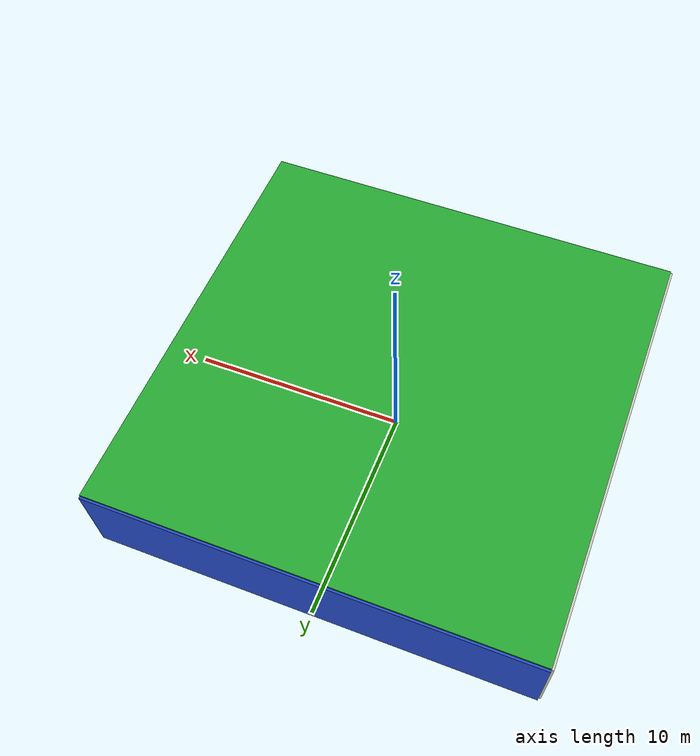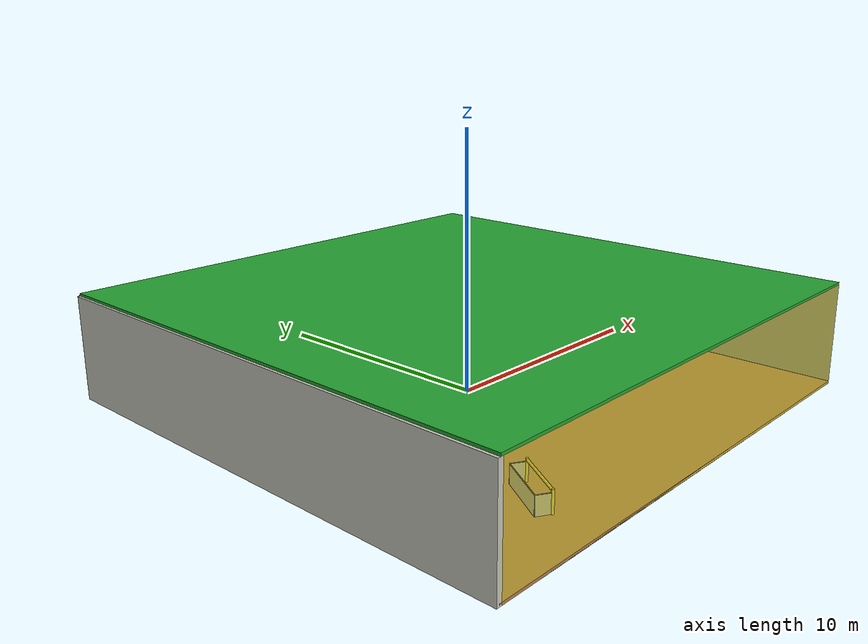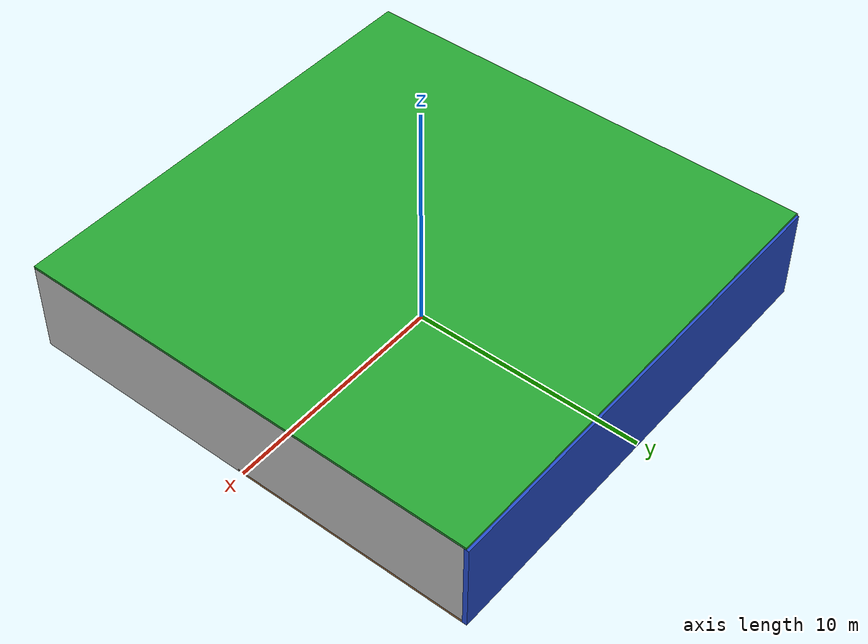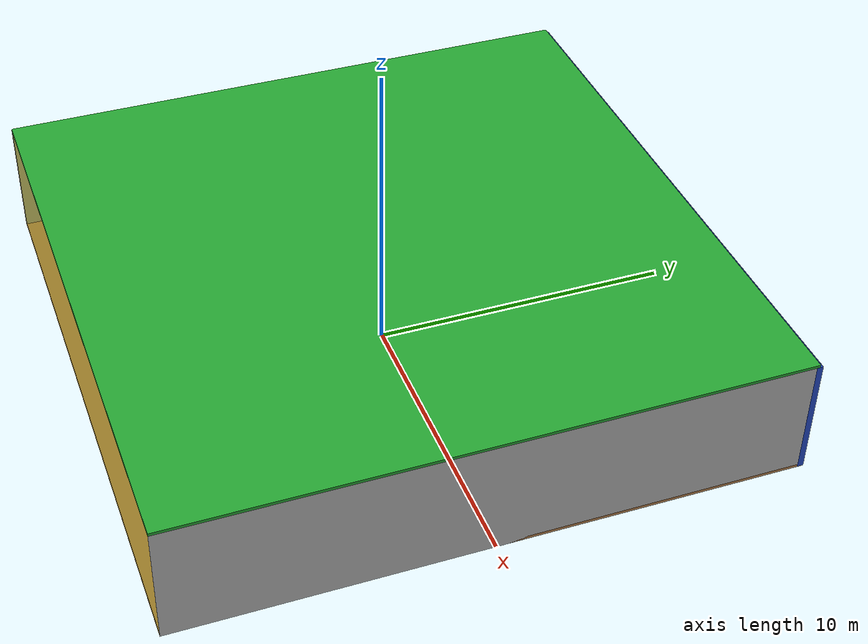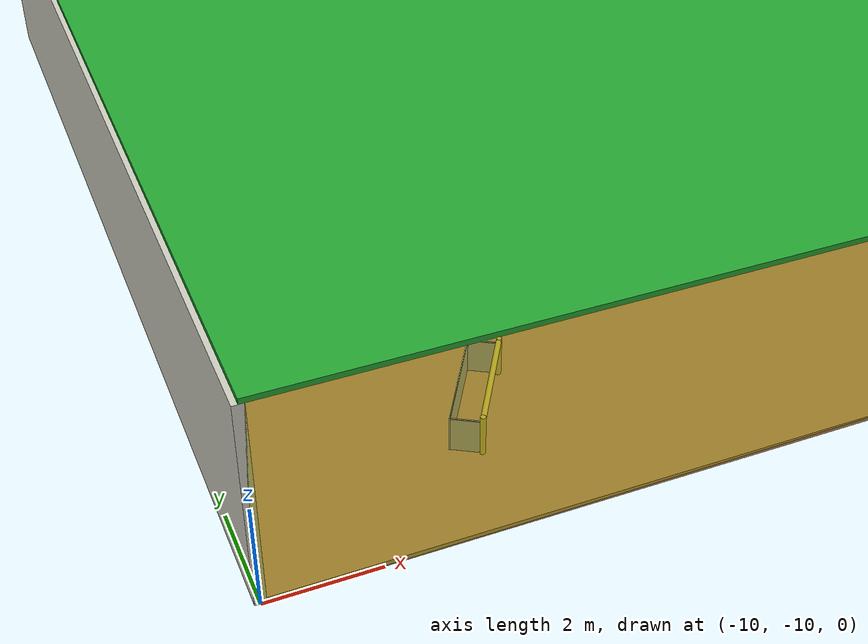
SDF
<sdf version="1.4">
 <world name="default">
  <physics type="ode">
   <max_step_size>0.001</max_step_size>
   <real_time_factor>1</real_time_factor>
   <real_time_update_rate>1000</real_time_update_rate>
   <gravity>0 0 -9.8</gravity>
  </physics>
  <scene><ambient>0.4 0.4 0.4 1</ambient><background>0.7 0.7 0.7 1</background><shadows>1</shadows></scene>
  <model name="Surrounding">
   <static>1</static>
   <link name="Ceiling">
    <collision name="Ceiling_Collision"><geometry><box><size>20 20 0.1</size></box></geometry></collision>
    <visual name="Ceiling_Visual">
     <geometry><box><size>20 20 0.1</size></box></geometry>
     <material>
      <script><uri>file://media/materials/scripts/gazebo.material</uri><name>Gazebo/GreenGlow</name></script>
     </material>
    </visual>
    <pose>0 0 4.05 0 0 0</pose>
   </link>
   <link name="Wall_South">
    <collision name="Wall_South_Collision">
     <geometry><box><size>20 0 4</size></box></geometry>
     <pose>0 0 2 0 -0 0</pose>
    </collision>
    <visual name="Wall_South_Visual">
     <pose>0 0 2 0 -0 0</pose>
     <geometry><box><size>20 0 4</size></box></geometry>
     <material>
      <script>
       <uri>file://media/materials/scripts/gazebo.material</uri>
       <name>Gazebo/YellowTransparent</name>
      </script>
     </material>
    </visual>
    <velocity_decay><linear>0</linear><angular>0</angular></velocity_decay>
    <pose>0 -10 0 0 -0 0</pose>
   </link>
   <link name="Wall_East">
    <collision name="Wall_21_Collision">
     <geometry><box><size>20 0 4</size></box></geometry>
     <pose>0 0 2 0 -0 0</pose>
    </collision>
    <visual name="Wall_21_Visual">
     <pose>0 0 2 0 -0 0</pose>
     <geometry><box><size>20 0 4</size></box></geometry>
     <material>
      <script><uri>file://media/materials/scripts/gazebo.material</uri><name>Gazebo/JointAnchor</name></script>
     </material>
    </visual>
    <velocity_decay><linear>0</linear><angular>0</angular></velocity_decay>
    <pose>10 0 0 0 -0 1.5708</pose>
   </link>
   <link name="Wall_North">
    <collision name="Wall_22_Collision">
     <geometry><box><size>20 0.2 4</size></box></geometry>
     <pose>0 0 2 0 -0 0</pose>
    </collision>
    <visual name="Wall_22_Visual">
     <pose>0 0 2 0 -0 0</pose>
     <geometry><box><size>20 0.2 4</size></box></geometry>
     <material>
      <script><uri>file://media/materials/scripts/gazebo.material</uri><name>Gazebo/Blue</name></script>
     </material>
    </visual>
    <velocity_decay><linear>0</linear><angular>0</angular></velocity_decay>
    <pose>0 10 0 0 -0 0</pose>
   </link>
   <link name="Wall_West">
    <collision name="Wall_23_Collision">
     <geometry><box><size>20 0.2 4</size></box></geometry>
     <pose>0 0 2 0 -0 0</pose>
    </collision>
    <visual name="Wall_23_Visual">
     <pose>0 0 2 0 -0 0</pose>
     <geometry><box><size>20 0.2 4</size></box></geometry>
     <material>
      <script><uri>file://media/materials/scripts/gazebo.material</uri><name>Gazebo/PaintedWall</name></script>
     </material>
    </visual>
    <velocity_decay><linear>0</linear><angular>0</angular></velocity_decay>
    <pose>-10 0 0 0 0 -1.5708</pose>
   </link>
   <link name="Ground_link">
    <collision name="collision">
     <pose>0 0 .05 0 -0 0</pose>
     <geometry><box><size>20 20 0.1</size></box></geometry>
    </collision>
    <visual name="visual">
     <pose>0 0 .05 0 -0 0</pose>
     <geometry><box><size>20 20 0.1</size></box></geometry>
     <material>
      <script><uri>file://media/materials/scripts/gazebo.material</uri><name>Gazebo/WoodFloor</name></script>
     </material>
    </visual>
   </link>
   <static>1</static>
  </model>
  <spherical_coordinates>
   <surface_model>EARTH_WGS84</surface_model>
   <latitude_deg>0</latitude_deg>
   <longitude_deg>0</longitude_deg>
   <elevation>0</elevation>
   <heading_deg>0</heading_deg>
  </spherical_coordinates>
  <light name="lightball_0" type="diffuse">
   <diffuse>0.8 0.8 0.8 1</diffuse>
   <specular>0.2 0.2 0.2 1</specular>
   <attenuation>
    <range>100</range>
    <constant>0.7</constant>
    <linear>0.01</linear>
    <quadratic>0.001</quadratic>
   </attenuation>
   <direction>-0.5 0.1 -0.9</direction>
   <pose>8.9618490281 -5.45554936674 0.694181579874 0 0 0</pose>
  </light>
  <light name="lightball_1" type="diffuse">
   <diffuse>0.8 0.8 0.8 1</diffuse>
   <specular>0.2 0.2 0.2 1</specular>
   <attenuation>
    <range>100</range>
    <constant>0.7</constant>
    <linear>0.01</linear>
    <quadratic>0.001</quadratic>
   </attenuation>
   <direction>-0.5 0.1 -0.9</direction>
   <pose>7.66750001593 -0.435560814493 3.07646771411 0 0 0</pose>
  </light>
  <light name="lightball_2" type="diffuse">
   <diffuse>0.8 0.8 0.8 1</diffuse>
   <specular>0.2 0.2 0.2 1</specular>
   <attenuation>
    <range>100</range>
    <constant>0.7</constant>
    <linear>0.01</linear>
    <quadratic>0.001</quadratic>
   </attenuation>
   <direction>-0.5 0.1 -0.9</direction>
   <pose>-5.97372168549 -5.33535042468 2.44433409711 0 0 0</pose>
  </light>
  <light name="lightball_3" type="diffuse">
   <diffuse>0.8 0.8 0.8 1</diffuse>
   <specular>0.2 0.2 0.2 1</specular>
   <attenuation>
    <range>100</range>
    <constant>0.7</constant>
    <linear>0.01</linear>
    <quadratic>0.001</quadratic>
   </attenuation>
   <direction>-0.5 0.1 -0.9</direction>
   <pose>6.73579264987 -1.04335855186 3.21310514682 0 0 0</pose>
  </light>
  <light name="lightball_4" type="diffuse">
   <diffuse>0.8 0.8 0.8 1</diffuse>
   <specular>0.2 0.2 0.2 1</specular>
   <attenuation>
    <range>100</range>
    <constant>0.7</constant>
    <linear>0.01</linear>
    <quadratic>0.001</quadratic>
   </attenuation>
   <direction>-0.5 0.1 -0.9</direction>
   <pose>2.204563965 -3.26118850986 2.96003907262 0 0 0</pose>
  </light>
  <light name="lightball_5" type="diffuse">
   <diffuse>0.8 0.8 0.8 1</diffuse>
   <specular>0.2 0.2 0.2 1</specular>
   <attenuation>
    <range>100</range>
    <constant>0.7</constant>
    <linear>0.01</linear>
    <quadratic>0.001</quadratic>
   </attenuation>
   <direction>-0.5 0.1 -0.9</direction>
   <pose>-9.44379179562 9.16955001985 2.71726323229 0 0 0</pose>
  </light>
  <light name="lightball_6" type="diffuse">
   <diffuse>0.8 0.8 0.8 1</diffuse>
   <specular>0.2 0.2 0.2 1</specular>
   <attenuation>
    <range>100</range>
    <constant>0.7</constant>
    <linear>0.01</linear>
    <quadratic>0.001</quadratic>
   </attenuation>
   <direction>-0.5 0.1 -0.9</direction>
   <pose>-6.19691360382 -6.79925815558 3.40860867433 0 0 0</pose>
  </light>
  <include><uri>model://cabinet</uri><pose>-8.16283617002 -1.21519611013 0 0 0 3.10166250878</pose></include>
  <include>
   <uri>model://robocup_3Dsim_goal</uri>
   <pose>-5.08133772587 -7.40522115149 0 0 0 2.60324633483</pose>
  </include>
  <include><uri>model://cabinet</uri><pose>1.83997274652 4.01409610455 0 0 0 0.197477570568</pose></include>
  <include>
   <uri>model://textured_shapes</uri>
   <pose>4.25571275517 6.83287375769 0 0 0 0.243620550543</pose>
  </include>
 </world>
</sdf>

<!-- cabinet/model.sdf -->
<sdf version="1.5">
  <model name="cabinet">
    <static>true</static>
    <link name="cabinet_bottom_plate">
      <inertial>
        <pose>0 0 -1 0 0 0</pose>
        <inertia>
          <ixx>2.050000</ixx>
          <ixy>0</ixy>
          <ixz>0</ixz>
          <iyy>2.050000</iyy>
          <iyz>0</iyz>
          <izz>2.050000</izz>
        </inertia>
        <mass>25.000000</mass>
      </inertial>
      <collision name="cabinet_bottom_plate_geom">
        <pose>0 0 0.010000 0 0 0</pose>
        <geometry>
          <box>
            <size>0.450000 0.450000 0.020000</size>
          </box>
        </geometry>
      </collision>
      <visual name="cabinet_bottom_plate_geom_visual">
        <pose>0 0 0.010000 0 0 0</pose>
        <geometry>
          <box>
            <size>0.450000 0.450000 0.020000</size>
          </box>
        </geometry>
        <material>
          <script>
            <uri>model://media/materials/scripts/gazebo.material</uri>
            <name>Gazebo/Wood</name>
          </script>
        </material>
      </visual>
      <collision name="cabinet_bottom_plate_geom_cabinet_back_plate">
        <pose>0.235000 0 0.510000 0 0 0</pose>
        <geometry>
          <box>
            <size>0.020000 0.450000 1.020000</size>
          </box>
        </geometry>
      </collision>
      <visual name="cabinet_bottom_plate_geom_cabinet_back_plate_visual">
        <pose>0.235000 0 0.510000 0 0 0</pose>
        <geometry>
          <box>
            <size>0.020000 0.450000 1.020000</size>
          </box>
        </geometry>
        <material>
          <script>
            <uri>model://media/materials/scripts/gazebo.material</uri>
            <name>Gazebo/Wood</name>
          </script>
        </material>
      </visual>
      <collision name="cabinet_bottom_plate_geom_cabinet_left_plate">
        <pose>0 0.235000 0.510000 0 0 0</pose>
        <geometry>
          <box>
            <size>0.450000 0.020000 1.020000</size>
          </box>
        </geometry>
      </collision>
      <visual name="cabinet_bottom_plate_geom_cabinet_left_plate_visual">
        <pose>0 0.235000 0.510000 0 0 0</pose>
        <geometry>
          <box>
            <size>0.450000 0.020000 1.020000</size>
          </box>
        </geometry>
        <material>
          <script>
            <uri>model://media/materials/scripts/gazebo.material</uri>
            <name>Gazebo/Wood</name>
          </script>
        </material>
      </visual>
      <collision name="cabinet_bottom_plate_geom_cabinet_middle_plate">
        <pose>0 0 0.510000 0 0 0</pose>
        <geometry>
          <box>
            <size>0.450000 0.450000 0.020000</size>
          </box>
        </geometry>
      </collision>
      <visual name="cabinet_bottom_plate_geom_cabinet_middle_plate_visual">
        <pose>0 0 0.510000 0 0 0</pose>
        <geometry>
          <box>
            <size>0.450000 0.450000 0.020000</size>
          </box>
        </geometry>
        <material>
          <script>
            <uri>model://media/materials/scripts/gazebo.material</uri>
            <name>Gazebo/Wood</name>
          </script>
        </material>
      </visual>
      <collision name="cabinet_bottom_plate_geom_cabinet_right_plate">
        <pose>0 -0.235000 0.510000 0 0 0</pose>
        <geometry>
          <box>
            <size>0.450000 0.020000 1.020000</size>
          </box>
        </geometry>
      </collision>
      <visual name="cabinet_bottom_plate_geom_cabinet_right_plate_visual">
        <pose>0 -0.235000 0.510000 0 0 0</pose>
        <geometry>
          <box>
            <size>0.450000 0.020000 1.020000</size>
          </box>
        </geometry>
        <material>
          <script>
            <uri>model://media/materials/scripts/gazebo.material</uri>
            <name>Gazebo/Wood</name>
          </script>
        </material>
      </visual>
      <collision name="cabinet_bottom_plate_geom_cabinet_top_plate">
        <pose>0 0 1.010000 0 0 0</pose>
        <geometry>
          <box>
            <size>0.450000 0.450000 0.020000</size>
          </box>
        </geometry>
      </collision>
      <visual name="cabinet_bottom_plate_geom_cabinet_top_plate_visual">
        <pose>0 0 1.010000 0 0 0</pose>
        <geometry>
          <box>
            <size>0.450000 0.450000 0.020000</size>
          </box>
        </geometry>
        <material>
          <script>
            <uri>model://media/materials/scripts/gazebo.material</uri>
            <name>Gazebo/Wood</name>
          </script>
        </material>
      </visual>
    </link>
  </model>
</sdf>

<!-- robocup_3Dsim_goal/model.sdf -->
<sdf version="1.5">
  <model name="robocup_3d_goal">
    <static>true</static>
    <link name="left_post">
      <pose>0 1.05 0.45 0 0 0</pose>
      <collision name="collision">
        <geometry>
          <cylinder>
            <radius>0.05</radius>
            <length>0.9</length>
          </cylinder>
        </geometry>
      </collision>
      <visual name="visual">
        <geometry>
          <cylinder>
            <radius>0.05</radius>
            <length>0.9</length>
          </cylinder>
        </geometry>
        <material>
          <script>
            <uri>file://media/materials/scripts/gazebo.material</uri>
            <name>Gazebo/ZincYellow</name>
          </script>
        </material>
      </visual>
    </link>
    <link name="left_support_horiz_lower">
      <pose>0.30 1.05 0.01 0 0 0</pose>
      <collision name="collision">
        <geometry>
          <box>
            <size>0.50 0.02 0.02</size>
          </box>
        </geometry>
      </collision>
      <visual name="visual">
        <geometry>
          <box>
            <size>0.50 0.02 0.02</size>
          </box>
        </geometry>
        <material>
          <script>
            <uri>file://media/materials/scripts/gazebo.material</uri>
            <name>Gazebo/White</name>
          </script>
        </material>
      </visual>
    </link>
    <link name="left_support_horiz_upper">
      <pose>0.30 1.05 0.79 0 0 0</pose>
      <collision name="collision">
        <geometry>
          <box>
            <size>0.50 0.02 0.02</size>
          </box>
        </geometry>
      </collision>
      <visual name="visual">
        <geometry>
          <box>
            <size>0.50 0.02 0.02</size>
          </box>
        </geometry>
        <material>
          <script>
            <uri>file://media/materials/scripts/gazebo.material</uri>
            <name>Gazebo/White</name>
          </script>
        </material>
      </visual>
    </link>
    <link name="left_support_vertical">
      <pose>0.56 1.05 0.4 0 1.5708 0</pose>
      <collision name="collision">
        <geometry>
          <box>
            <size>0.80 0.02 0.02</size>
          </box>
        </geometry>
      </collision>
      <visual name="visual">
        <geometry>
          <box>
            <size>0.80 0.02 0.02</size>
          </box>
        </geometry>
        <material>
          <script>
            <uri>file://media/materials/scripts/gazebo.material</uri>
            <name>Gazebo/White</name>
          </script>
        </material>
      </visual>
    </link>
    <link name="right_support_horiz_lower">
      <pose>0.30 -1.05 0.01 0 0 0</pose>
      <collision name="collision">
        <geometry>
          <box>
            <size>0.50 0.02 0.02</size>
          </box>
        </geometry>
      </collision>
      <visual name="visual">
        <geometry>
          <box>
            <size>0.50 0.02 0.02</size>
          </box>
        </geometry>
        <material>
          <script>
            <uri>file://media/materials/scripts/gazebo.material</uri>
            <name>Gazebo/White</name>
          </script>
        </material>
      </visual>
    </link>
    <link name="right_support_horiz_upper">
      <pose>0.30 -1.05 0.79 0 0 0</pose>
      <collision name="collision">
        <geometry>
          <box>
            <size>0.50 0.02 0.02</size>
          </box>
        </geometry>
      </collision>
      <visual name="visual">
        <geometry>
          <box>
            <size>0.50 0.02 0.02</size>
          </box>
        </geometry>
        <material>
          <script>
            <uri>file://media/materials/scripts/gazebo.material</uri>
            <name>Gazebo/White</name>
          </script>
        </material>
      </visual>
    </link>
    <link name="right_support_vertical">
      <pose>0.56 -1.05 0.4 0 1.5708 0</pose>
      <collision name="collision">
        <geometry>
          <box>
            <size>0.80 0.02 0.02</size>
          </box>
        </geometry>
      </collision>
      <visual name="visual">
        <geometry>
          <box>
            <size>0.80 0.02 0.02</size>
          </box>
        </geometry>
        <material>
          <script>
            <uri>file://media/materials/scripts/gazebo.material</uri>
            <name>Gazebo/White</name>
          </script>
        </material>
      </visual>
    </link>
    <link name="center_support_horiz_lower">
      <pose>0.56 0 0.01 0 1.5708 0</pose>
      <collision name="collision">
        <geometry>
          <box>
            <size>0.02 2.08 0.02</size>
          </box>
        </geometry>
      </collision>
      <visual name="visual">
        <geometry>
          <box>
            <size>0.02 2.08 0.02</size>
          </box>
        </geometry>
        <material>
          <script>
            <uri>file://media/materials/scripts/gazebo.material</uri>
            <name>Gazebo/White</name>
          </script>
        </material>
      </visual>
    </link>
    <link name="center_support_horiz_upper">
      <pose>0.56 0 0.79 0 1.5708 0</pose>
      <collision name="collision">
        <geometry>
          <box>
            <size>0.02 2.08 0.02</size>
          </box>
        </geometry>
      </collision>
      <visual name="visual">
        <geometry>
          <box>
            <size>0.02 2.08 0.02</size>
          </box>
        </geometry>
        <material>
          <script>
            <uri>file://media/materials/scripts/gazebo.material</uri>
            <name>Gazebo/White</name>
          </script>
        </material>
      </visual>
    </link>
    <link name="right_post">
      <pose>0 -1.05 0.45 0 0 0</pose>
      <collision name="collision">
        <geometry>
          <cylinder>
            <radius>0.05</radius>
            <length>0.9</length>
          </cylinder>
        </geometry>
      </collision>
      <visual name="visual">
        <geometry>
          <cylinder>
            <radius>0.05</radius>
            <length>0.9</length>
          </cylinder>
        </geometry>
        <material>
          <script>
            <uri>file://media/materials/scripts/gazebo.material</uri>
            <name>Gazebo/ZincYellow</name>
          </script>
        </material>
      </visual>
    </link>
    <link name="crossbar">
      <pose>0 0 0.85 1.57 1.57 0</pose>
      <collision name="collision">
        <geometry>
          <cylinder>
            <radius>0.05</radius>
            <length>2.0</length>
          </cylinder>
        </geometry>
      </collision>
      <visual name="visual">
        <geometry>
          <cylinder>
            <radius>0.05</radius>
            <length>2.0</length>
          </cylinder>
        </geometry>
        <material>
          <script>
            <uri>file://media/materials/scripts/gazebo.material</uri>
            <name>Gazebo/ZincYellow</name>
          </script>
        </material>
      </visual>
    </link>
    <link name="center_net">
      <pose>0.56 0 0.40 0 0 0</pose>
      <collision name="collision">
        <geometry>
          <box>
            <size>0.01 2.1 0.80</size>
          </box>
        </geometry>
      </collision>
      <visual name="visual">
        <geometry>
          <box>
            <size>0.01 2.1 0.80</size>
          </box>
        </geometry>
        <material>
          <script>
            <uri>model://../model_source/models/robocup09_spl_field/materials/scripts/</uri>
            <uri>model://../model_source/models/robocup09_spl_field/materials/textures/</uri>
            <name>RoboCup/Net</name>
          </script>
        </material>
      </visual>
    </link>
    <link name="left_net">
      <pose>0.30 1.05 0.40 0 0 0</pose>
      <collision name="collision">
        <geometry>
          <box>
            <size>0.50 0.01 0.76</size>
          </box>
        </geometry>
      </collision>
      <visual name="visual">
        <geometry>
          <box>
            <size>0.50 0.01 0.76</size>
          </box>
        </geometry>
        <material>
          <script>
            <uri>model://../model_source/models/robocup09_spl_field/materials/scripts/</uri>
            <uri>model://../model_source/models/robocup09_spl_field/materials/textures/</uri>
            <name>RoboCup/Net</name>
          </script>
        </material>
      </visual>
    </link>
    <link name="right_net">
      <pose>0.30 -1.05 0.40 0 0 0</pose>
      <collision name="collision">
        <geometry>
          <box>
            <size>0.50 0.01 0.76</size>
          </box>
        </geometry>
      </collision>
      <visual name="visual">
        <geometry>
          <box>
            <size>0.50 0.01 0.76</size>
          </box>
        </geometry>
        <material>
          <script>
            <uri>model://../model_source/models/robocup09_spl_field/materials/scripts/</uri>
            <uri>model://../model_source/models/robocup09_spl_field/materials/textures/</uri>
            <name>RoboCup/Net</name>
          </script>
        </material>
      </visual>
    </link>
  </model>
</sdf>

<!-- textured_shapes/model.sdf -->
<sdf version="1.6">
  <model name="textured_shapes">
    <pose>0 0 0.5 0 0 0</pose>
    <link name="box">
      <pose>0 -1.5 0 0 0 0</pose>
      <collision name="collision">
        <geometry>
          <box>
            <size>1 1 1</size>
          </box>
        </geometry>
      </collision>
      <visual name="visual">
        <geometry>
          <box>
            <size>1 1 1</size>
          </box>
        </geometry>
        <material>
          <script>
            <uri>model://../model_source/models/textured_shapes/materials/scripts</uri>
            <uri>model://../model_source/models/textured_shapes/materials/textures</uri>
            <name>TexturedShape/Squares</name>
          </script>
        </material>
      </visual>
    </link>
    <link name="sphere">
      <collision name="collision">
        <geometry>
          <sphere>
            <radius>0.5</radius>
          </sphere>
        </geometry>
      </collision>
      <visual name="visual">
        <geometry>
          <sphere>
            <radius>0.5</radius>
          </sphere>
        </geometry>
        <material>
          <script>
            <uri>model://../model_source/models/textured_shapes/materials/scripts</uri>
            <uri>model://../model_source/models/textured_shapes/materials/textures</uri>
            <name>TexturedShape/Squares</name>
          </script>
        </material>
      </visual>
    </link>
    <link name="cylinder">
      <pose>0 1.5 0 0 0 0</pose>
      <collision name="collision">
        <geometry>
          <cylinder>
            <radius>0.5</radius>
            <length>1</length>
          </cylinder>
        </geometry>
      </collision>
      <visual name="visual">
        <geometry>
          <cylinder>
            <radius>0.5</radius>
            <length>1</length>
          </cylinder>
        </geometry>
        <material>
          <script>
            <uri>model://../model_source/models/textured_shapes/materials/scripts</uri>
            <uri>model://../model_source/models/textured_shapes/materials/textures</uri>
            <name>TexturedShape/Squares</name>
          </script>
        </material>
      </visual>
    </link>
  </model>
</sdf>
